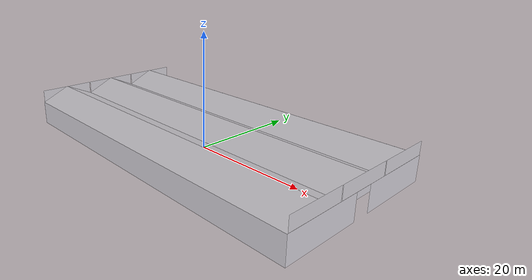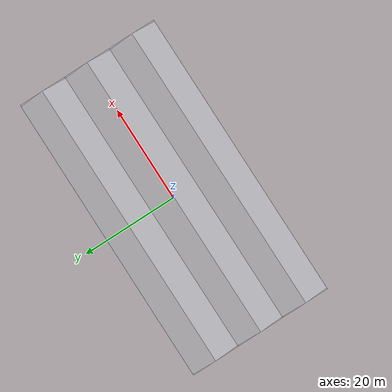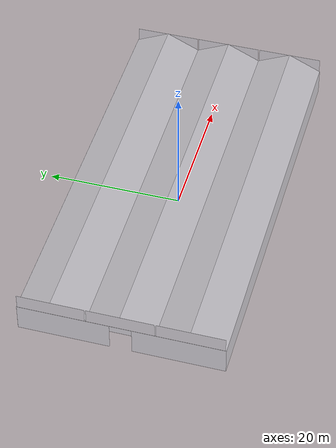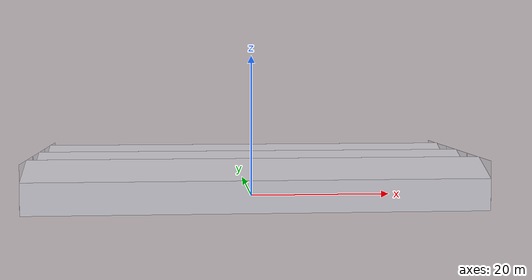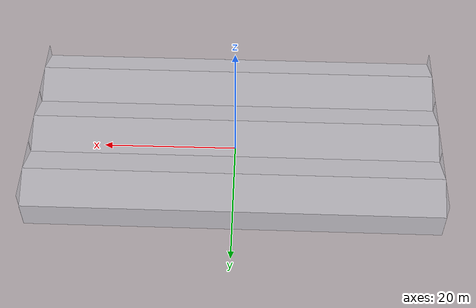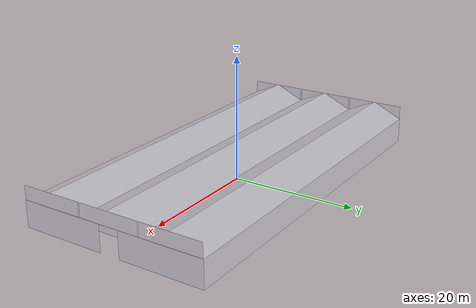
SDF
<?xml version="1.0" ?>
<sdf version="1.9">
  <model name="polyhouse_covering">
    <static>true</static>

    <link name="covering_link">
      <pose>0 0 0 0 0 0</pose>

      <!-- Side Walls (Translucent Polyethylene)      -->

      <!-- North Wall (Y = +15.0m) -->
      <visual name="wall_north">
        <pose>0 15.0 2.1 0 0 0</pose>
        <geometry><box><size>60.0 0.02 4.2</size></box></geometry>
        <material>
          <ambient>0.82 0.90 0.95 0.30</ambient>
          <diffuse>0.85 0.92 0.98 0.30</diffuse>
          <specular>0.4 0.45 0.5 1</specular>
          <roughness>0.2</roughness>
        </material>
      </visual>

      <!-- South Wall (Y = -15.0m) -->
      <visual name="wall_south">
        <pose>0 -15.0 2.1 0 0 0</pose>
        <geometry><box><size>60.0 0.02 4.2</size></box></geometry>
        <material>
          <ambient>0.82 0.90 0.95 0.30</ambient>
          <diffuse>0.85 0.92 0.98 0.30</diffuse>
          <specular>0.4 0.45 0.5 1</specular>
          <roughness>0.2</roughness>
        </material>
      </visual>

      <!-- West Wall (Front, X = -30.0m) with center doorway opening -->
      <visual name="wall_west_left">
        <pose>-30.0 -8.3 2.1 0 0 0</pose>
        <geometry><box><size>0.02 13.4 4.2</size></box></geometry>
        <material>
          <ambient>0.82 0.90 0.95 0.30</ambient>
          <diffuse>0.85 0.92 0.98 0.30</diffuse>
          <specular>0.4 0.45 0.5 1</specular>
        </material>
      </visual>
      <visual name="wall_west_right">
        <pose>-30.0 8.3 2.1 0 0 0</pose>
        <geometry><box><size>0.02 13.4 4.2</size></box></geometry>
        <material>
          <ambient>0.82 0.90 0.95 0.30</ambient>
          <diffuse>0.85 0.92 0.98 0.30</diffuse>
          <specular>0.4 0.45 0.5 1</specular>
        </material>
      </visual>
      <visual name="wall_west_top_transom">
        <pose>-30.0 0 3.7 0 0 0</pose>
        <geometry><box><size>0.02 3.2 1.0</size></box></geometry>
        <material>
          <ambient>0.82 0.90 0.95 0.30</ambient>
          <diffuse>0.85 0.92 0.98 0.30</diffuse>
        </material>
      </visual>

      <!-- East Wall (Rear, X = +30.0m) with center doorway opening -->
      <visual name="wall_east_left">
        <pose>30.0 -8.3 2.1 0 0 0</pose>
        <geometry><box><size>0.02 13.4 4.2</size></box></geometry>
        <material>
          <ambient>0.82 0.90 0.95 0.30</ambient>
          <diffuse>0.85 0.92 0.98 0.30</diffuse>
          <specular>0.4 0.45 0.5 1</specular>
        </material>
      </visual>
      <visual name="wall_east_right">
        <pose>30.0 8.3 2.1 0 0 0</pose>
        <geometry><box><size>0.02 13.4 4.2</size></box></geometry>
        <material>
          <ambient>0.82 0.90 0.95 0.30</ambient>
          <diffuse>0.85 0.92 0.98 0.30</diffuse>
          <specular>0.4 0.45 0.5 1</specular>
        </material>
      </visual>
      <visual name="wall_east_top_transom">
        <pose>30.0 0 3.7 0 0 0</pose>
        <geometry><box><size>0.02 3.2 1.0</size></box></geometry>
        <material>
          <ambient>0.82 0.90 0.95 0.30</ambient>
          <diffuse>0.85 0.92 0.98 0.30</diffuse>
        </material>
      </visual>

      <!-- Gable End Polyethylene Cladding (Gables)   -->
      <visual name="gable_west_bay1">
        <pose>-30.0 -10.0 5.35 0 0 0</pose>
        <geometry><box><size>0.02 9.8 2.2</size></box></geometry>
        <material><ambient>0.82 0.90 0.95 0.28</ambient><diffuse>0.85 0.92 0.98 0.28</diffuse></material>
      </visual>
      <visual name="gable_west_bay2">
        <pose>-30.0 0.0 5.35 0 0 0</pose>
        <geometry><box><size>0.02 9.8 2.2</size></box></geometry>
        <material><ambient>0.82 0.90 0.95 0.28</ambient><diffuse>0.85 0.92 0.98 0.28</diffuse></material>
      </visual>
      <visual name="gable_west_bay3">
        <pose>-30.0 10.0 5.35 0 0 0</pose>
        <geometry><box><size>0.02 9.8 2.2</size></box></geometry>
        <material><ambient>0.82 0.90 0.95 0.28</ambient><diffuse>0.85 0.92 0.98 0.28</diffuse></material>
      </visual>

      <visual name="gable_east_bay1">
        <pose>30.0 -10.0 5.35 0 0 0</pose>
        <geometry><box><size>0.02 9.8 2.2</size></box></geometry>
        <material><ambient>0.82 0.90 0.95 0.28</ambient><diffuse>0.85 0.92 0.98 0.28</diffuse></material>
      </visual>
      <visual name="gable_east_bay2">
        <pose>30.0 0.0 5.35 0 0 0</pose>
        <geometry><box><size>0.02 9.8 2.2</size></box></geometry>
        <material><ambient>0.82 0.90 0.95 0.28</ambient><diffuse>0.85 0.92 0.98 0.28</diffuse></material>
      </visual>
      <visual name="gable_east_bay3">
        <pose>30.0 10.0 5.35 0 0 0</pose>
        <geometry><box><size>0.02 9.8 2.2</size></box></geometry>
        <material><ambient>0.82 0.90 0.95 0.28</ambient><diffuse>0.85 0.92 0.98 0.28</diffuse></material>
      </visual>

      <!-- Roof Polyethylene Slopes (3 Bays)          -->

      <!-- Bay 1 (Y: -15 to -5, Ridge: Y = -10, Z = 6.5) -->
      <visual name="roof_bay1_south_slope">
        <pose>0 -12.5 5.35 0.431 0 0</pose>
        <geometry><box><size>60.0 5.50 0.015</size></box></geometry>
        <material>
          <ambient>0.85 0.93 0.98 0.25</ambient>
          <diffuse>0.88 0.95 1.0 0.25</diffuse>
          <specular>0.5 0.55 0.6 1</specular>
        </material>
      </visual>
      <visual name="roof_bay1_north_slope">
        <pose>0 -7.5 5.35 -0.431 0 0</pose>
        <geometry><box><size>60.0 5.50 0.015</size></box></geometry>
        <material>
          <ambient>0.85 0.93 0.98 0.25</ambient>
          <diffuse>0.88 0.95 1.0 0.25</diffuse>
          <specular>0.5 0.55 0.6 1</specular>
        </material>
      </visual>

      <!-- Bay 2 (Y: -5 to +5, Ridge: Y = 0.0, Z = 6.5) -->
      <visual name="roof_bay2_south_slope">
        <pose>0 -2.5 5.35 0.431 0 0</pose>
        <geometry><box><size>60.0 5.50 0.015</size></box></geometry>
        <material>
          <ambient>0.85 0.93 0.98 0.25</ambient>
          <diffuse>0.88 0.95 1.0 0.25</diffuse>
          <specular>0.5 0.55 0.6 1</specular>
        </material>
      </visual>
      <visual name="roof_bay2_north_slope">
        <pose>0 2.5 5.35 -0.431 0 0</pose>
        <geometry><box><size>60.0 5.50 0.015</size></box></geometry>
        <material>
          <ambient>0.85 0.93 0.98 0.25</ambient>
          <diffuse>0.88 0.95 1.0 0.25</diffuse>
          <specular>0.5 0.55 0.6 1</specular>
        </material>
      </visual>

      <!-- Bay 3 (Y: +5 to +15, Ridge: Y = 10.0, Z = 6.5) -->
      <visual name="roof_bay3_south_slope">
        <pose>0 7.5 5.35 0.431 0 0</pose>
        <geometry><box><size>60.0 5.50 0.015</size></box></geometry>
        <material>
          <ambient>0.85 0.93 0.98 0.25</ambient>
          <diffuse>0.88 0.95 1.0 0.25</diffuse>
          <specular>0.5 0.55 0.6 1</specular>
        </material>
      </visual>
      <visual name="roof_bay3_north_slope">
        <pose>0 12.5 5.35 -0.431 0 0</pose>
        <geometry><box><size>60.0 5.50 0.015</size></box></geometry>
        <material>
          <ambient>0.85 0.93 0.98 0.25</ambient>
          <diffuse>0.88 0.95 1.0 0.25</diffuse>
          <specular>0.5 0.55 0.6 1</specular>
        </material>
      </visual>

    </link>
  </model>
</sdf>
